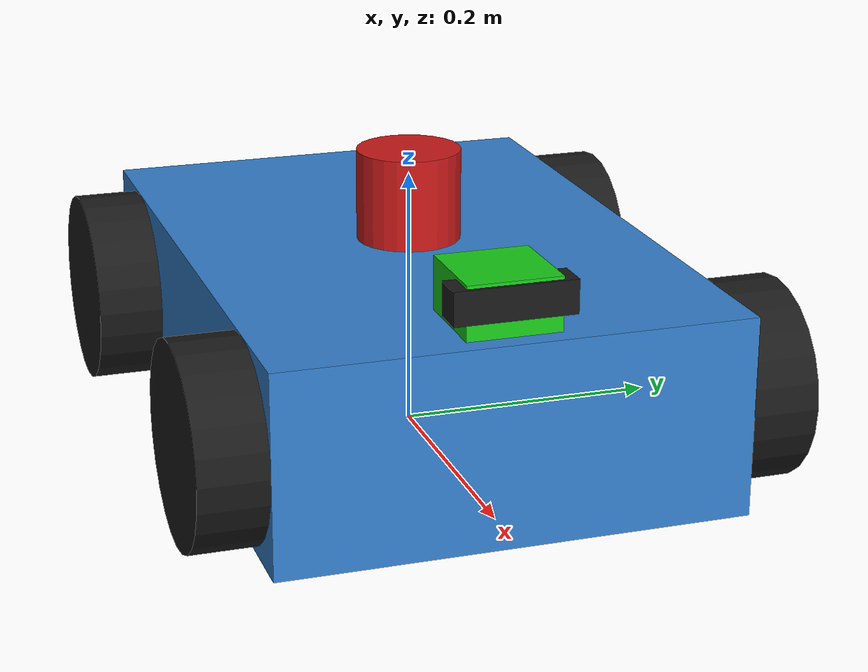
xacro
<?xml version="1.0"?>
<robot name="anhc_robot" xmlns:xacro="http://www.ros.org/wiki/xacro">

  <!-- ── Runtime Arguments ────────────────────────────────────── -->
  <xacro:arg name="use_sim"         default="true"/>
  <xacro:arg name="robot_namespace" default="anhc"/>
  <xacro:arg name="use_ros2_control" default="true"/>

  <!-- ── Include full robot definition ────────────────────────── -->
  <xacro:include filename="$(find anhc_robot_description)/urdf/robots/anhc_robot.xacro"/>

</robot>

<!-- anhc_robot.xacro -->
<robot name="anhc_robot" xmlns:xacro="http://www.ros.org/wiki/xacro">

  <!-- ── Include subsystem xacros ────────────────────────────── -->
  <xacro:include filename="$(find anhc_robot_description)/urdf/mech/anhc_base.xacro"/>
  <xacro:include filename="$(find anhc_robot_description)/urdf/sensors/anhc_lidar_3d.xacro"/>
  <xacro:include filename="$(find anhc_robot_description)/urdf/sensors/anhc_lidar_2d.xacro"/>
  <xacro:include filename="$(find anhc_robot_description)/urdf/sensors/anhc_camera.xacro"/>
  <xacro:include filename="$(find anhc_robot_description)/urdf/control/anhc_control.xacro"/>

  <!-- ── Material Definitions ────────────────────────────────── -->
  <material name="anhc_chassis_material"> <color rgba="0.2 0.5 0.8 1.0"/> </material>
  <material name="anhc_wheel_material">   <color rgba="0.1 0.1 0.1 1.0"/> </material>
  <material name="anhc_lidar_material">   <color rgba="0.8 0.1 0.1 1.0"/> </material>
  <material name="anhc_lidar2d_material"> <color rgba="0.1 0.8 0.1 1.0"/> </material>
  <material name="anhc_camera_material">  <color rgba="0.1 0.1 0.1 1.0"/> </material>

  <!-- ── Instantiate Mechanical Base ─────────────────────────── -->
  <!-- (base.xacro defines base_footprint, anhc_base_link, 4 wheels) -->

  <!-- ── Place 3D LiDAR on top-center of chassis ─────────────── -->
  <!--
    base_height/2 = 0.075  → top surface of chassis
    lidar cylinder height/2 = 0.035
    Total z = 0.075 + 0.035 = 0.110
  -->
  <xacro:anhc_lidar_3d
    parent_link="anhc_base_link"
    xyz="0.0 0.0 0.110"
    rpy="0 0 0"/>

  <!-- ── Place 2D LiDAR at front of chassis ───────────────────── -->
  <!--
    x = base_length/2 = 0.25 (front edge)
    z = base_height/2 + lidar_box_height/2 = 0.075 + 0.02 = 0.095
  -->
  <xacro:anhc_lidar_2d
    parent_link="anhc_base_link"
    xyz="0.20 0.0 0.095"
    rpy="0 0 0"/>

  <!-- ── Place RGB Camera at front, slightly raised ────────────── -->
  <!--
    x = 0.225 (just at front edge)
    z = 0.10 (above chassis top)
    pitch = 0 (looking straight forward)
  -->
  <xacro:anhc_camera
    parent_link="anhc_base_link"
    xyz="0.225 0.0 0.10"
    rpy="0 0 0"/>

  <!-- ── Instantiate ros2_control + Gazebo plugins ────────────── -->
  <xacro:anhc_control/>

  <!-- ── IMU Link (for TF completeness) ──────────────────────── -->
  <link name="anhc_imu_link">
    <inertial>
      <mass value="0.01"/>
      <inertia ixx="0.0001" ixy="0" ixz="0"
               iyy="0.0001" iyz="0"
               izz="0.0001"/>
    </inertial>
  </link>
  <joint name="anhc_imu_joint" type="fixed">
    <parent link="anhc_base_link"/>
    <child  link="anhc_imu_link"/>
    <origin xyz="0 0 0" rpy="0 0 0"/>
  </joint>

  <!-- ── Gazebo Physics Properties ────────────────────────────── -->
  <gazebo reference="anhc_base_link">
    <mu1>0.8</mu1>
    <mu2>0.8</mu2>
    <kp>1e6</kp>
    <kd>1.0</kd>
    <material>Gazebo/Blue</material>
  </gazebo>

  <gazebo reference="anhc_fl_wheel_link">
    <mu1>1.0</mu1><mu2>1.0</mu2><kp>1e6</kp><kd>1.0</kd>
    <material>Gazebo/Black</material>
  </gazebo>
  <gazebo reference="anhc_fr_wheel_link">
    <mu1>1.0</mu1><mu2>1.0</mu2><kp>1e6</kp><kd>1.0</kd>
    <material>Gazebo/Black</material>
  </gazebo>
  <gazebo reference="anhc_rl_wheel_link">
    <mu1>1.0</mu1><mu2>1.0</mu2><kp>1e6</kp><kd>1.0</kd>
    <material>Gazebo/Black</material>
  </gazebo>
  <gazebo reference="anhc_rr_wheel_link">
    <mu1>1.0</mu1><mu2>1.0</mu2><kp>1e6</kp><kd>1.0</kd>
    <material>Gazebo/Black</material>
  </gazebo>

</robot>

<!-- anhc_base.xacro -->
<robot xmlns:xacro="http://www.ros.org/wiki/xacro">

  <!-- ── Tunable Parameters ─────────────────────────────────── -->
  <xacro:property name="base_length"    value="0.50"/>   <!-- meters -->
  <xacro:property name="base_width"     value="0.35"/>
  <xacro:property name="base_height"    value="0.15"/>
  <xacro:property name="base_mass"      value="10.0"/>   <!-- kg     -->

  <xacro:property name="wheel_radius"   value="0.075"/>
  <xacro:property name="wheel_width"    value="0.05"/>
  <xacro:property name="wheel_mass"     value="0.5"/>

  <!-- Wheel X offset from center (front/rear) -->
  <xacro:property name="wheel_x_offset" value="0.175"/>
  <!-- Wheel Y offset from center (left/right) -->
  <xacro:property name="wheel_y_offset" value="0.200"/>
  <!-- Wheel Z = radius (sits on ground) minus half base height -->
  <xacro:property name="wheel_z_offset" value="0.0"/>

  <!-- ── Inertia Macros ──────────────────────────────────────── -->
  <!-- Box inertia (chassis) -->
  <xacro:macro name="box_inertia" params="m l w h">
    <inertial>
      <mass value="${m}"/>
      <inertia
        ixx="${(m/12.0)*(w*w + h*h)}"  ixy="0" ixz="0"
        iyy="${(m/12.0)*(l*l + h*h)}"  iyz="0"
        izz="${(m/12.0)*(l*l + w*w)}"/>
    </inertial>
  </xacro:macro>

  <!-- Cylinder inertia (wheels) -->
  <xacro:macro name="cylinder_inertia" params="m r h">
    <inertial>
      <mass value="${m}"/>
      <inertia
        ixx="${(m/12.0)*(3*r*r + h*h)}"  ixy="0" ixz="0"
        iyy="${(m/12.0)*(3*r*r + h*h)}"  iyz="0"
        izz="${(m/2.0)*r*r}"/>
    </inertial>
  </xacro:macro>

  <!-- ── Wheel Macro ─────────────────────────────────────────── -->
  <!--
    Creates one wheel link + joint.
    Parameters:
      prefix  : fl | fr | rl | rr
      x_sign  : +1 (front) | -1 (rear)
      y_sign  : +1 (left)  | -1 (right)
  -->
  <xacro:macro name="anhc_wheel" params="prefix x_sign y_sign">

    <!-- Link -->
    <link name="anhc_${prefix}_wheel_link">
      <visual>
        <origin xyz="0 0 0" rpy="${pi/2} 0 0"/>
        <geometry>
          <cylinder radius="${wheel_radius}" length="${wheel_width}"/>
        </geometry>
        <material name="anhc_wheel_material">
          <color rgba="0.1 0.1 0.1 1.0"/>
        </material>
      </visual>
      <collision>
        <origin xyz="0 0 0" rpy="${pi/2} 0 0"/>
        <geometry>
          <cylinder radius="${wheel_radius}" length="${wheel_width}"/>
        </geometry>
      </collision>
      <xacro:cylinder_inertia m="${wheel_mass}" r="${wheel_radius}" h="${wheel_width}"/>
    </link>

    <!-- Continuous Joint (wheel spins freely around Y axis) -->
    <joint name="anhc_${prefix}_wheel_joint" type="continuous">
      <parent link="anhc_base_link"/>
      <child  link="anhc_${prefix}_wheel_link"/>
      <origin
        xyz="${x_sign * wheel_x_offset}
             ${y_sign * wheel_y_offset}
             ${wheel_z_offset}"
        rpy="0 0 0"/>
      <axis xyz="0 1 0"/>
      <dynamics damping="0.1" friction="0.1"/>
      <limit effort="10.0" velocity="5.0"/>
    </joint>

  </xacro:macro>

  <!-- ══════════════════════════════════════════════════════════
       LINKS
       ══════════════════════════════════════════════════════════ -->

  <!-- base_footprint: virtual link at ground level, origin of the robot -->
  <link name="base_footprint"/>

  <!-- base_link: geometric center of chassis, elevated above ground -->
  <link name="anhc_base_link">
    <visual>
      <origin xyz="0 0 0" rpy="0 0 0"/>
      <geometry>
        <box size="${base_length} ${base_width} ${base_height}"/>
      </geometry>
      <material name="anhc_chassis_material">
        <color rgba="0.2 0.5 0.8 1.0"/>
      </material>
    </visual>
    <collision>
      <origin xyz="0 0 0" rpy="0 0 0"/>
      <geometry>
        <box size="${base_length} ${base_width} ${base_height}"/>
      </geometry>
    </collision>
    <xacro:box_inertia m="${base_mass}" l="${base_length}" w="${base_width}" h="${base_height}"/>
  </link>

  <!-- ══════════════════════════════════════════════════════════
       JOINTS
       ══════════════════════════════════════════════════════════ -->

  <!-- base_footprint → base_link: lift chassis off the ground by wheel_radius -->
  <joint name="base_footprint_joint" type="fixed">
    <parent link="base_footprint"/>
    <child  link="anhc_base_link"/>
    <origin xyz="0 0 ${wheel_radius}" rpy="0 0 0"/>
  </joint>

  <!-- ── Instantiate 4 Wheels ────────────────────────────────── -->
  <!-- Front-Left  --> <xacro:anhc_wheel prefix="fl" x_sign=" 1" y_sign=" 1"/>
  <!-- Front-Right --> <xacro:anhc_wheel prefix="fr" x_sign=" 1" y_sign="-1"/>
  <!-- Rear-Left   --> <xacro:anhc_wheel prefix="rl" x_sign="-1" y_sign=" 1"/>
  <!-- Rear-Right  --> <xacro:anhc_wheel prefix="rr" x_sign="-1" y_sign="-1"/>

</robot>

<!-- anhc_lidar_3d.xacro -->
<robot xmlns:xacro="http://www.ros.org/wiki/xacro">

  <xacro:macro name="anhc_lidar_3d" params="parent_link xyz rpy">

    <link name="anhc_lidar_3d_link">
      <visual>
        <origin xyz="0 0 0" rpy="0 0 0"/>
        <geometry><cylinder radius="0.04" length="0.07"/></geometry>
        <material name="anhc_lidar_material">
          <color rgba="0.8 0.1 0.1 1.0"/>
        </material>
      </visual>
      <collision>
        <origin xyz="0 0 0" rpy="0 0 0"/>
        <geometry><cylinder radius="0.04" length="0.07"/></geometry>
      </collision>
      <inertial>
        <mass value="0.1"/>
        <inertia ixx="0.001" ixy="0" ixz="0"
                 iyy="0.001" iyz="0" izz="0.001"/>
      </inertial>
    </link>

    <joint name="anhc_lidar_3d_joint" type="fixed">
      <parent link="${parent_link}"/>
      <child  link="anhc_lidar_3d_link"/>
      <origin xyz="${xyz}" rpy="${rpy}"/>
    </joint>

    <gazebo reference="anhc_lidar_3d_link">
      <sensor name="anhc_lidar_3d_sensor" type="gpu_lidar">
        <topic>/anhc/lidar_3d/points</topic>
        <update_rate>10</update_rate>
        <always_on>true</always_on>
        <visualize>false</visualize>
        <!-- frame_id: use ignition/gz convention -->
        <frame_id>anhc_lidar_3d_link</frame_id>
        <lidar>
          <scan>
            <horizontal>
              <samples>360</samples>
              <resolution>1</resolution>
              <min_angle>-3.14159</min_angle>
              <max_angle>3.14159</max_angle>
            </horizontal>
            <vertical>
              <samples>16</samples>
              <resolution>1</resolution>
              <min_angle>-0.26180</min_angle>
              <max_angle>0.26180</max_angle>
            </vertical>
          </scan>
          <range>
            <min>0.1</min>
            <max>100.0</max>
            <resolution>0.01</resolution>
          </range>
          <noise>
            <type>gaussian</type>
            <mean>0.0</mean>
            <stddev>0.01</stddev>
          </noise>
        </lidar>
      </sensor>
    </gazebo>

  </xacro:macro>
</robot>

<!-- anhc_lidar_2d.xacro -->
<robot xmlns:xacro="http://www.ros.org/wiki/xacro">

  <xacro:macro name="anhc_lidar_2d" params="parent_link xyz rpy">

    <link name="anhc_lidar_2d_link">
      <visual>
        <origin xyz="0 0 0" rpy="0 0 0"/>
        <geometry><box size="0.07 0.07 0.04"/></geometry>
        <material name="anhc_lidar2d_material">
          <color rgba="0.1 0.8 0.1 1.0"/>
        </material>
      </visual>
      <collision>
        <origin xyz="0 0 0" rpy="0 0 0"/>
        <geometry><box size="0.07 0.07 0.04"/></geometry>
      </collision>
      <inertial>
        <mass value="0.05"/>
        <inertia ixx="0.001" ixy="0" ixz="0"
                 iyy="0.001" iyz="0" izz="0.001"/>
      </inertial>
    </link>

    <joint name="anhc_lidar_2d_joint" type="fixed">
      <parent link="${parent_link}"/>
      <child  link="anhc_lidar_2d_link"/>
      <origin xyz="${xyz}" rpy="${rpy}"/>
    </joint>

    <gazebo reference="anhc_lidar_2d_link">
      <sensor name="anhc_lidar_2d_sensor" type="gpu_lidar">
        <topic>/anhc/scan</topic>
        <update_rate>15</update_rate>
        <always_on>true</always_on>
        <visualize>true</visualize>
        <frame_id>anhc_lidar_2d_link</frame_id>
        <lidar>
          <scan>
            <horizontal>
              <samples>540</samples>
              <resolution>1</resolution>
              <min_angle>-2.35619</min_angle>
              <max_angle>2.35619</max_angle>
            </horizontal>
            <vertical>
              <samples>1</samples>
              <resolution>1</resolution>
              <min_angle>0</min_angle>
              <max_angle>0</max_angle>
            </vertical>
          </scan>
          <range>
            <min>0.1</min>
            <max>30.0</max>
            <resolution>0.01</resolution>
          </range>
          <noise>
            <type>gaussian</type>
            <mean>0.0</mean>
            <stddev>0.005</stddev>
          </noise>
        </lidar>
      </sensor>
    </gazebo>

  </xacro:macro>
</robot>

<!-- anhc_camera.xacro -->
<robot xmlns:xacro="http://www.ros.org/wiki/xacro">

  <xacro:macro name="anhc_camera" params="parent_link xyz rpy">

    <link name="anhc_camera_link">
      <visual>
        <origin xyz="0 0 0" rpy="0 0 0"/>
        <geometry><box size="0.025 0.09 0.025"/></geometry>
        <material name="anhc_camera_material">
          <color rgba="0.1 0.1 0.1 1.0"/>
        </material>
      </visual>
      <collision>
        <origin xyz="0 0 0" rpy="0 0 0"/>
        <geometry><box size="0.025 0.09 0.025"/></geometry>
      </collision>
      <inertial>
        <mass value="0.02"/>
        <inertia ixx="0.0001" ixy="0" ixz="0"
                 iyy="0.0001" iyz="0" izz="0.0001"/>
      </inertial>
    </link>

    <joint name="anhc_camera_joint" type="fixed">
      <parent link="${parent_link}"/>
      <child  link="anhc_camera_link"/>
      <origin xyz="${xyz}" rpy="${rpy}"/>
    </joint>

    <link name="anhc_camera_optical_link"/>
    <joint name="anhc_camera_optical_joint" type="fixed">
      <parent link="anhc_camera_link"/>
      <child  link="anhc_camera_optical_link"/>
      <origin xyz="0 0 0" rpy="${-pi/2} 0 ${-pi/2}"/>
    </joint>

    <gazebo reference="anhc_camera_link">
      <sensor name="anhc_camera_sensor" type="camera">
        <topic>/anhc/camera</topic>
        <update_rate>30</update_rate>
        <always_on>true</always_on>
        <visualize>false</visualize>
        <frame_id>anhc_camera_optical_link</frame_id>
        <camera>
          <horizontal_fov>1.3962634</horizontal_fov>
          <image>
            <width>640</width>
            <height>480</height>
            <format>R8G8B8</format>
          </image>
          <clip>
            <near>0.02</near>
            <far>300</far>
          </clip>
          <noise>
            <type>gaussian</type>
            <mean>0.0</mean>
            <stddev>0.005</stddev>
          </noise>
        </camera>
      </sensor>
    </gazebo>

  </xacro:macro>
</robot>
